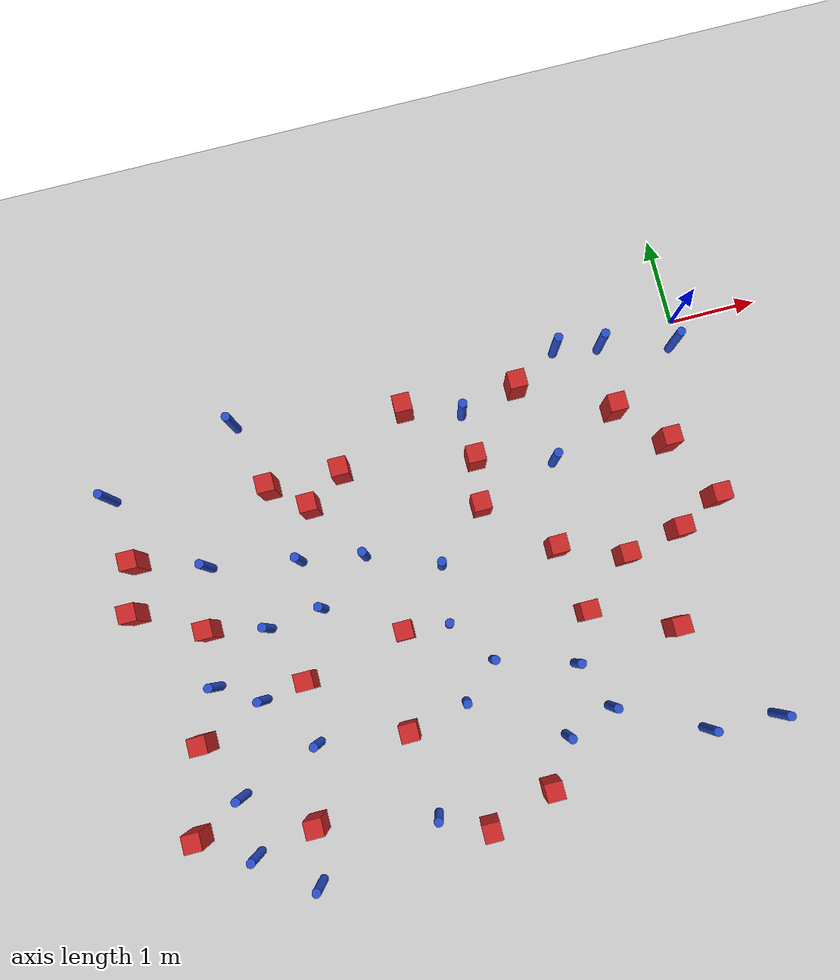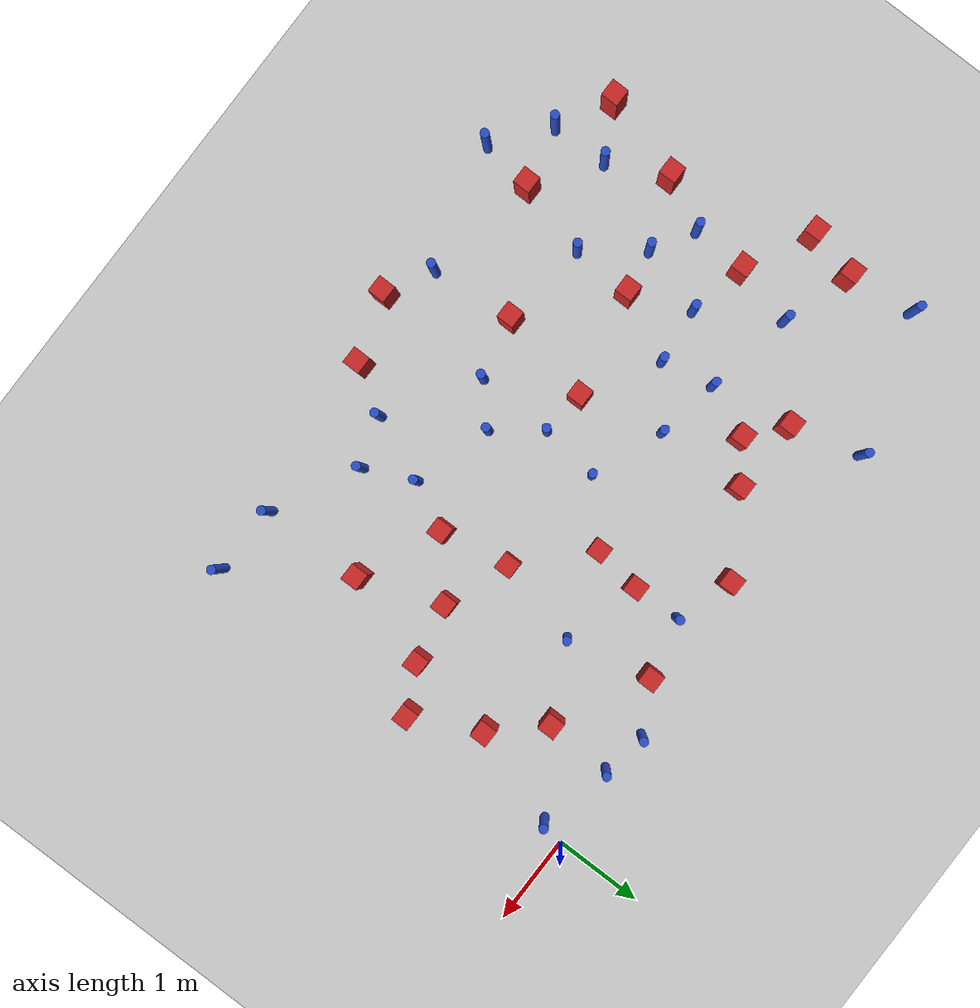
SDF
<sdf version="1.6">
 <world name="default">
  <model name="ground_plane">
   <static>1</static>
   <link name="link">
    <collision name="collision">
     <geometry><plane><normal>0 0 1</normal><size>100 100</size></plane></geometry>
     <surface><friction><ode><mu>100</mu><mu2>50</mu2></ode></friction></surface>
    </collision>
    <visual name="visual">
     <cast_shadows>0</cast_shadows>
     <geometry><plane><normal>0 0 1</normal><size>100 100</size></plane></geometry>
     <material>
      <ambient>1.0 1.0 1.0 1.0</ambient>
      <diffuse>0.8 0.8 0.8 1.0</diffuse>
      <specular>0.01 0.01 0.01 1.000000</specular>
     </material>
    </visual>
   </link>
  </model>
  <model name="NamedLocations">
   <static>true</static>
   <link name="DefaultStart"><pose>8.5 0 0 0 0 3.14</pose></link>
  </model>
  <model name="pole_obstacle0">
   <static>true</static>
   <pose>-5.31480974983 -2.30998127651 -2.66029137441e-07 -5.69430205643e-07 6.84129966548e-07 -8.68349370881e-08</pose>
   <link name="link">
    <pose>0 0 0.3 0 -0 0</pose>
    <inertial>
     <mass>1</mass>
     <inertia><ixx>0.145833</ixx><ixy>0</ixy><ixz>0</ixz><iyy>0.145833</iyy><iyz>0</iyz><izz>0.125</izz></inertia>
    </inertial>
    <collision name="collision">
     <geometry><cylinder><radius>0.05</radius><length>.6</length></cylinder></geometry>
    </collision>
    <visual name="visual">
     <geometry><cylinder><radius>0.05</radius><length>.6</length></cylinder></geometry>
     <material>
      <script><name>Gazebo/Blue</name><uri>file://media/materials/scripts/gazebo.material</uri></script>
     </material>
    </visual>
   </link>
  </model>
  <model name="pole_obstacle1">
   <static>true</static>
   <pose>-3.4054695182 -3.62984040929 -2.66029137441e-07 -5.69430205643e-07 6.84129966548e-07 -8.68349370903e-08</pose>
   <link name="link">
    <pose>0 0 0.3 0 -0 0</pose>
    <inertial>
     <mass>1</mass>
     <inertia><ixx>0.145833</ixx><ixy>0</ixy><ixz>0</ixz><iyy>0.145833</iyy><iyz>0</iyz><izz>0.125</izz></inertia>
    </inertial>
    <collision name="collision">
     <geometry><cylinder><radius>0.05</radius><length>.6</length></cylinder></geometry>
    </collision>
    <visual name="visual">
     <geometry><cylinder><radius>0.05</radius><length>.6</length></cylinder></geometry>
     <material>
      <script><name>Gazebo/Blue</name><uri>file://media/materials/scripts/gazebo.material</uri></script>
     </material>
    </visual>
   </link>
  </model>
  <model name="square_post_obstacle2">
   <static>true</static>
   <pose>-4.08276042932 -3.77510423322 -7.80171244635e-07 7.17449752808e-06 -5.6639232126e-07 2.2715510512e-05</pose>
   <link name="link">
    <pose>0 0 0.25 0 -0 0</pose>
    <inertial>
     <mass>100</mass>
     <inertia>
      <ixx>0.166667</ixx>
      <ixy>0</ixy>
      <ixz>0</ixz>
      <iyy>0.166667</iyy>
      <iyz>0</iyz>
      <izz>0.166667</izz>
     </inertia>
    </inertial>
    <collision name="collision"><geometry><box><size>.2 .2 .5</size></box></geometry></collision>
    <visual name="visual">
     <geometry><box><size>.2 .2 .5</size></box></geometry>
     <material>
      <script><name>Gazebo/Red</name><uri>file://media/materials/scripts/gazebo.material</uri></script>
     </material>
    </visual>
   </link>
  </model>
  <model name="square_post_obstacle3">
   <static>true</static>
   <pose>-2.63320074149 -1.02899796857 -7.80171244635e-07 7.17449752808e-06 -5.6639232126e-07 2.2715510512e-05</pose>
   <link name="link">
    <pose>0 0 0.25 0 -0 0</pose>
    <inertial>
     <mass>100</mass>
     <inertia>
      <ixx>0.166667</ixx>
      <ixy>0</ixy>
      <ixz>0</ixz>
      <iyy>0.166667</iyy>
      <iyz>0</iyz>
      <izz>0.166667</izz>
     </inertia>
    </inertial>
    <collision name="collision"><geometry><box><size>.2 .2 .5</size></box></geometry></collision>
    <visual name="visual">
     <geometry><box><size>.2 .2 .5</size></box></geometry>
     <material>
      <script><name>Gazebo/Red</name><uri>file://media/materials/scripts/gazebo.material</uri></script>
     </material>
    </visual>
   </link>
  </model>
  <model name="square_post_obstacle5">
   <static>true</static>
   <pose>-0.97354520431 -0.861248595019 -7.80171244635e-07 7.17449752808e-06 -5.6639232126e-07 2.2715510512e-05</pose>
   <link name="link">
    <pose>0 0 0.25 0 -0 0</pose>
    <inertial>
     <mass>100</mass>
     <inertia>
      <ixx>0.166667</ixx>
      <ixy>0</ixy>
      <ixz>0</ixz>
      <iyy>0.166667</iyy>
      <iyz>0</iyz>
      <izz>0.166667</izz>
     </inertia>
    </inertial>
    <collision name="collision"><geometry><box><size>.2 .2 .5</size></box></geometry></collision>
    <visual name="visual">
     <geometry><box><size>.2 .2 .5</size></box></geometry>
     <material>
      <script><name>Gazebo/Red</name><uri>file://media/materials/scripts/gazebo.material</uri></script>
     </material>
    </visual>
   </link>
  </model>
  <model name="pole_obstacle10">
   <static>true</static>
   <pose>-2.1281152215 -3.52390038128 -2.66029137441e-07 -5.69430205643e-07 6.84129966548e-07 -8.68349370903e-08</pose>
   <link name="link">
    <pose>0 0 0.3 0 -0 0</pose>
    <inertial>
     <mass>1</mass>
     <inertia><ixx>0.145833</ixx><ixy>0</ixy><ixz>0</ixz><iyy>0.145833</iyy><iyz>0</iyz><izz>0.125</izz></inertia>
    </inertial>
    <collision name="collision">
     <geometry><cylinder><radius>0.05</radius><length>.6</length></cylinder></geometry>
    </collision>
    <visual name="visual">
     <geometry><cylinder><radius>0.05</radius><length>.6</length></cylinder></geometry>
     <material>
      <script><name>Gazebo/Blue</name><uri>file://media/materials/scripts/gazebo.material</uri></script>
     </material>
    </visual>
   </link>
  </model>
  <model name="square_post_obstacle11">
   <static>true</static>
   <pose>-6.58977767759 -1.23455952323 -7.80171244635e-07 7.17449752808e-06 -5.6639232126e-07 2.2715510512e-05</pose>
   <link name="link">
    <pose>0 0 0.25 0 -0 0</pose>
    <inertial>
     <mass>100</mass>
     <inertia>
      <ixx>0.166667</ixx>
      <ixy>0</ixy>
      <ixz>0</ixz>
      <iyy>0.166667</iyy>
      <iyz>0</iyz>
      <izz>0.166667</izz>
     </inertia>
    </inertial>
    <collision name="collision"><geometry><box><size>.2 .2 .5</size></box></geometry></collision>
    <visual name="visual">
     <geometry><box><size>.2 .2 .5</size></box></geometry>
     <material>
      <script><name>Gazebo/Red</name><uri>file://media/materials/scripts/gazebo.material</uri></script>
     </material>
    </visual>
   </link>
  </model>
  <model name="pole_obstacle18">
   <static>true</static>
   <pose>-5.97897691177 -4.64420532735 -2.66029137441e-07 -5.69430205655e-07 6.84129966534e-07 -8.68349370984e-08</pose>
   <link name="link">
    <pose>0 0 0.3 0 -0 0</pose>
    <inertial>
     <mass>1</mass>
     <inertia><ixx>0.145833</ixx><ixy>0</ixy><ixz>0</ixz><iyy>0.145833</iyy><iyz>0</iyz><izz>0.125</izz></inertia>
    </inertial>
    <collision name="collision">
     <geometry><cylinder><radius>0.05</radius><length>.6</length></cylinder></geometry>
    </collision>
    <visual name="visual">
     <geometry><cylinder><radius>0.05</radius><length>.6</length></cylinder></geometry>
     <material>
      <script><name>Gazebo/Blue</name><uri>file://media/materials/scripts/gazebo.material</uri></script>
     </material>
    </visual>
   </link>
  </model>
  <model name="square_post_obstacle26">
   <static>true</static>
   <pose>-4.13092339159 -0.799358883415 -7.80171244635e-07 7.17449752808e-06 -5.6639232126e-07 2.2715510512e-05</pose>
   <link name="link">
    <pose>0 0 0.25 0 -0 0</pose>
    <inertial>
     <mass>100</mass>
     <inertia>
      <ixx>0.166667</ixx>
      <ixy>0</ixy>
      <ixz>0</ixz>
      <iyy>0.166667</iyy>
      <iyz>0</iyz>
      <izz>0.166667</izz>
     </inertia>
    </inertial>
    <collision name="collision"><geometry><box><size>.2 .2 .5</size></box></geometry></collision>
    <visual name="visual">
     <geometry><box><size>.2 .2 .5</size></box></geometry>
     <material>
      <script><name>Gazebo/Red</name><uri>file://media/materials/scripts/gazebo.material</uri></script>
     </material>
    </visual>
   </link>
  </model>
  <model name="square_post_obstacle27">
   <static>true</static>
   <pose>-0.961714128237 -3.40473056918 -7.80171244635e-07 7.17449752808e-06 -5.6639232126e-07 2.2715510512e-05</pose>
   <link name="link">
    <pose>0 0 0.25 0 -0 0</pose>
    <inertial>
     <mass>100</mass>
     <inertia>
      <ixx>0.166667</ixx>
      <ixy>0</ixy>
      <ixz>0</ixz>
      <iyy>0.166667</iyy>
      <iyz>0</iyz>
      <izz>0.166667</izz>
     </inertia>
    </inertial>
    <collision name="collision"><geometry><box><size>.2 .2 .5</size></box></geometry></collision>
    <visual name="visual">
     <geometry><box><size>.2 .2 .5</size></box></geometry>
     <material>
      <script><name>Gazebo/Red</name><uri>file://media/materials/scripts/gazebo.material</uri></script>
     </material>
    </visual>
   </link>
  </model>
  <model name="pole_obstacle40">
   <static>true</static>
   <pose>-5.39167906871 -5.10151447825 -2.66029137441e-07 -5.69430205655e-07 6.84129966534e-07 -8.68349370984e-08</pose>
   <link name="link">
    <pose>0 0 0.3 0 -0 0</pose>
    <inertial>
     <mass>1</mass>
     <inertia><ixx>0.145833</ixx><ixy>0</ixy><ixz>0</ixz><iyy>0.145833</iyy><iyz>0</iyz><izz>0.125</izz></inertia>
    </inertial>
    <collision name="collision">
     <geometry><cylinder><radius>0.05</radius><length>.6</length></cylinder></geometry>
    </collision>
    <visual name="visual">
     <geometry><cylinder><radius>0.05</radius><length>.6</length></cylinder></geometry>
     <material>
      <script><name>Gazebo/Blue</name><uri>file://media/materials/scripts/gazebo.material</uri></script>
     </material>
    </visual>
   </link>
  </model>
  <model name="pole_obstacle47">
   <static>true</static>
   <pose>-5.18003695618 0.0177498336318 -2.66029137441e-07 -5.69430205624e-07 6.8412996657e-07 -8.68349370742e-08</pose>
   <link name="link">
    <pose>0 0 0.3 0 -0 0</pose>
    <inertial>
     <mass>1</mass>
     <inertia><ixx>0.145833</ixx><ixy>0</ixy><ixz>0</ixz><iyy>0.145833</iyy><iyz>0</iyz><izz>0.125</izz></inertia>
    </inertial>
    <collision name="collision">
     <geometry><cylinder><radius>0.05</radius><length>.6</length></cylinder></geometry>
    </collision>
    <visual name="visual">
     <geometry><cylinder><radius>0.05</radius><length>.6</length></cylinder></geometry>
     <material>
      <script><name>Gazebo/Blue</name><uri>file://media/materials/scripts/gazebo.material</uri></script>
     </material>
    </visual>
   </link>
  </model>
  <model name="pole_obstacle58">
   <static>true</static>
   <pose>-2.64363936691 -0.482050326124 -2.66029137441e-07 -5.69430205631e-07 6.84129966562e-07 -8.68349370797e-08</pose>
   <link name="link">
    <pose>0 0 0.3 0 -0 0</pose>
    <inertial>
     <mass>1</mass>
     <inertia><ixx>0.145833</ixx><ixy>0</ixy><ixz>0</ixz><iyy>0.145833</iyy><iyz>0</iyz><izz>0.125</izz></inertia>
    </inertial>
    <collision name="collision">
     <geometry><cylinder><radius>0.05</radius><length>.6</length></cylinder></geometry>
    </collision>
    <visual name="visual">
     <geometry><cylinder><radius>0.05</radius><length>.6</length></cylinder></geometry>
     <material>
      <script><name>Gazebo/Blue</name><uri>file://media/materials/scripts/gazebo.material</uri></script>
     </material>
    </visual>
   </link>
  </model>
  <model name="pole_obstacle61">
   <static>true</static>
   <pose>-0.922826009975 -0.108753170742 -2.66029137441e-07 -5.69430205632e-07 6.84129966561e-07 -8.683493708e-08</pose>
   <link name="link">
    <pose>0 0 0.3 0 -0 0</pose>
    <inertial>
     <mass>1</mass>
     <inertia><ixx>0.145833</ixx><ixy>0</ixy><ixz>0</ixz><iyy>0.145833</iyy><iyz>0</iyz><izz>0.125</izz></inertia>
    </inertial>
    <collision name="collision">
     <geometry><cylinder><radius>0.05</radius><length>.6</length></cylinder></geometry>
    </collision>
    <visual name="visual">
     <geometry><cylinder><radius>0.05</radius><length>.6</length></cylinder></geometry>
     <material>
      <script><name>Gazebo/Blue</name><uri>file://media/materials/scripts/gazebo.material</uri></script>
     </material>
    </visual>
   </link>
  </model>
  <model name="square_post_obstacle49">
   <static>true</static>
   <pose>-0.134188480845 -2.11112355516 -7.80171244635e-07 7.17449752808e-06 -5.6639232126e-07 2.2715510512e-05</pose>
   <link name="link">
    <pose>0 0 0.25 0 -0 0</pose>
    <inertial>
     <mass>100</mass>
     <inertia>
      <ixx>0.166667</ixx>
      <ixy>0</ixy>
      <ixz>0</ixz>
      <iyy>0.166667</iyy>
      <iyz>0</iyz>
      <izz>0.166667</izz>
     </inertia>
    </inertial>
    <collision name="collision"><geometry><box><size>.2 .2 .5</size></box></geometry></collision>
    <visual name="visual">
     <geometry><box><size>.2 .2 .5</size></box></geometry>
     <material>
      <script><name>Gazebo/Red</name><uri>file://media/materials/scripts/gazebo.material</uri></script>
     </material>
    </visual>
   </link>
  </model>
  <model name="pole_obstacle64">
   <static>true</static>
   <pose>-1.43454465451 -0.023070368788 -2.66029137441e-07 -5.69430205639e-07 6.84129966552e-07 -8.68349370859e-08</pose>
   <link name="link">
    <pose>0 0 0.3 0 -0 0</pose>
    <inertial>
     <mass>1</mass>
     <inertia><ixx>0.145833</ixx><ixy>0</ixy><ixz>0</ixz><iyy>0.145833</iyy><iyz>0</iyz><izz>0.125</izz></inertia>
    </inertial>
    <collision name="collision">
     <geometry><cylinder><radius>0.05</radius><length>.6</length></cylinder></geometry>
    </collision>
    <visual name="visual">
     <geometry><cylinder><radius>0.05</radius><length>.6</length></cylinder></geometry>
     <material>
      <script><name>Gazebo/Blue</name><uri>file://media/materials/scripts/gazebo.material</uri></script>
     </material>
    </visual>
   </link>
  </model>
  <model name="square_post_obstacle50">
   <static>true</static>
   <pose>-0.490725618799 -1.37000280899 -7.80171244635e-07 7.17449752808e-06 -5.6639232126e-07 2.2715510512e-05</pose>
   <link name="link">
    <pose>0 0 0.25 0 -0 0</pose>
    <inertial>
     <mass>100</mass>
     <inertia>
      <ixx>0.166667</ixx>
      <ixy>0</ixy>
      <ixz>0</ixz>
      <iyy>0.166667</iyy>
      <iyz>0</iyz>
      <izz>0.166667</izz>
     </inertia>
    </inertial>
    <collision name="collision"><geometry><box><size>.2 .2 .5</size></box></geometry></collision>
    <visual name="visual">
     <geometry><box><size>.2 .2 .5</size></box></geometry>
     <material>
      <script><name>Gazebo/Red</name><uri>file://media/materials/scripts/gazebo.material</uri></script>
     </material>
    </visual>
   </link>
  </model>
  <model name="square_post_obstacle58">
   <static>true</static>
   <pose>-1.28801961862 -2.49920312969 -7.80171244635e-07 7.17449752808e-06 -5.6639232126e-07 2.2715510512e-05</pose>
   <link name="link">
    <pose>0 0 0.25 0 -0 0</pose>
    <inertial>
     <mass>100</mass>
     <inertia>
      <ixx>0.166667</ixx>
      <ixy>0</ixy>
      <ixz>0</ixz>
      <iyy>0.166667</iyy>
      <iyz>0</iyz>
      <izz>0.166667</izz>
     </inertia>
    </inertial>
    <collision name="collision"><geometry><box><size>.2 .2 .5</size></box></geometry></collision>
    <visual name="visual">
     <geometry><box><size>.2 .2 .5</size></box></geometry>
     <material>
      <script><name>Gazebo/Red</name><uri>file://media/materials/scripts/gazebo.material</uri></script>
     </material>
    </visual>
   </link>
  </model>
  <model name="square_post_obstacle60">
   <static>true</static>
   <pose>-4.55728557664 -1.10179400375 -7.80171244635e-07 7.17449752808e-06 -5.6639232126e-07 2.2715510512e-05</pose>
   <link name="link">
    <pose>0 0 0.25 0 -0 0</pose>
    <inertial>
     <mass>100</mass>
     <inertia>
      <ixx>0.166667</ixx>
      <ixy>0</ixy>
      <ixz>0</ixz>
      <iyy>0.166667</iyy>
      <iyz>0</iyz>
      <izz>0.166667</izz>
     </inertia>
    </inertial>
    <collision name="collision"><geometry><box><size>.2 .2 .5</size></box></geometry></collision>
    <visual name="visual">
     <geometry><box><size>.2 .2 .5</size></box></geometry>
     <material>
      <script><name>Gazebo/Red</name><uri>file://media/materials/scripts/gazebo.material</uri></script>
     </material>
    </visual>
   </link>
  </model>
  <model name="pole_obstacle72">
   <static>true</static>
   <pose>-1.77357552131 -1.2686371613 -2.66029137441e-07 -5.69430205631e-07 6.84129966561e-07 -8.68349370801e-08</pose>
   <link name="link">
    <pose>0 0 0.3 0 -0 0</pose>
    <inertial>
     <mass>1</mass>
     <inertia><ixx>0.145833</ixx><ixy>0</ixy><ixz>0</ixz><iyy>0.145833</iyy><iyz>0</iyz><izz>0.125</izz></inertia>
    </inertial>
    <collision name="collision">
     <geometry><cylinder><radius>0.05</radius><length>.6</length></cylinder></geometry>
    </collision>
    <visual name="visual">
     <geometry><cylinder><radius>0.05</radius><length>.6</length></cylinder></geometry>
     <material>
      <script><name>Gazebo/Blue</name><uri>file://media/materials/scripts/gazebo.material</uri></script>
     </material>
    </visual>
   </link>
  </model>
  <model name="pole_obstacle76">
   <static>true</static>
   <pose>-0.933149514957 -4.56151281711 -2.66029137441e-07 -5.69430205631e-07 6.84129966561e-07 -8.68349370784e-08</pose>
   <link name="link">
    <pose>0 0 0.3 0 -0 0</pose>
    <inertial>
     <mass>1</mass>
     <inertia><ixx>0.145833</ixx><ixy>0</ixy><ixz>0</ixz><iyy>0.145833</iyy><iyz>0</iyz><izz>0.125</izz></inertia>
    </inertial>
    <collision name="collision">
     <geometry><cylinder><radius>0.05</radius><length>.6</length></cylinder></geometry>
    </collision>
    <visual name="visual">
     <geometry><cylinder><radius>0.05</radius><length>.6</length></cylinder></geometry>
     <material>
      <script><name>Gazebo/Blue</name><uri>file://media/materials/scripts/gazebo.material</uri></script>
     </material>
    </visual>
   </link>
  </model>
  <model name="square_post_obstacle68">
   <static>true</static>
   <pose>-6.28549997619 -3.35256677984 -7.80171244635e-07 7.17449752808e-06 -5.6639232126e-07 2.2715510512e-05</pose>
   <link name="link">
    <pose>0 0 0.25 0 -0 0</pose>
    <inertial>
     <mass>100</mass>
     <inertia>
      <ixx>0.166667</ixx>
      <ixy>0</ixy>
      <ixz>0</ixz>
      <iyy>0.166667</iyy>
      <iyz>0</iyz>
      <izz>0.166667</izz>
     </inertia>
    </inertial>
    <collision name="collision"><geometry><box><size>.2 .2 .5</size></box></geometry></collision>
    <visual name="visual">
     <geometry><box><size>.2 .2 .5</size></box></geometry>
     <material>
      <script><name>Gazebo/Red</name><uri>file://media/materials/scripts/gazebo.material</uri></script>
     </material>
    </visual>
   </link>
  </model>
  <model name="square_post_obstacle73">
   <static>true</static>
   <pose>-2.70863230317 -1.56334786548 -7.80171244635e-07 7.17449752808e-06 -5.6639232126e-07 2.2715510512e-05</pose>
   <link name="link">
    <pose>0 0 0.25 0 -0 0</pose>
    <inertial>
     <mass>100</mass>
     <inertia>
      <ixx>0.166667</ixx>
      <ixy>0</ixy>
      <ixz>0</ixz>
      <iyy>0.166667</iyy>
      <iyz>0</iyz>
      <izz>0.166667</izz>
     </inertia>
    </inertial>
    <collision name="collision"><geometry><box><size>.2 .2 .5</size></box></geometry></collision>
    <visual name="visual">
     <geometry><box><size>.2 .2 .5</size></box></geometry>
     <material>
      <script><name>Gazebo/Red</name><uri>file://media/materials/scripts/gazebo.material</uri></script>
     </material>
    </visual>
   </link>
  </model>
  <model name="pole_obstacle86">
   <static>true</static>
   <pose>-3.0027866112 -3.25793591408 -2.66029137441e-07 -5.6943020563e-07 6.84129966563e-07 -8.68349370788e-08</pose>
   <link name="link">
    <pose>0 0 0.3 0 -0 0</pose>
    <inertial>
     <mass>1</mass>
     <inertia><ixx>0.145833</ixx><ixy>0</ixy><ixz>0</ixz><iyy>0.145833</iyy><iyz>0</iyz><izz>0.125</izz></inertia>
    </inertial>
    <collision name="collision">
     <geometry><cylinder><radius>0.05</radius><length>.6</length></cylinder></geometry>
    </collision>
    <visual name="visual">
     <geometry><cylinder><radius>0.05</radius><length>.6</length></cylinder></geometry>
     <material>
      <script><name>Gazebo/Blue</name><uri>file://media/materials/scripts/gazebo.material</uri></script>
     </material>
    </visual>
   </link>
  </model>
  <model name="square_post_obstacle75">
   <static>true</static>
   <pose>-0.638254333047 -2.36425969241 -7.80171244635e-07 7.17449752808e-06 -5.6639232126e-07 2.2715510512e-05</pose>
   <link name="link">
    <pose>0 0 0.25 0 -0 0</pose>
    <inertial>
     <mass>100</mass>
     <inertia>
      <ixx>0.166667</ixx>
      <ixy>0</ixy>
      <ixz>0</ixz>
      <iyy>0.166667</iyy>
      <iyz>0</iyz>
      <izz>0.166667</izz>
     </inertia>
    </inertial>
    <collision name="collision"><geometry><box><size>.2 .2 .5</size></box></geometry></collision>
    <visual name="visual">
     <geometry><box><size>.2 .2 .5</size></box></geometry>
     <material>
      <script><name>Gazebo/Red</name><uri>file://media/materials/scripts/gazebo.material</uri></script>
     </material>
    </visual>
   </link>
  </model>
  <model name="square_post_obstacle76">
   <static>true</static>
   <pose>-6.56061072974 -4.31150388161 -7.80171244635e-07 7.17449752808e-06 -5.6639232126e-07 2.2715510512e-05</pose>
   <link name="link">
    <pose>0 0 0.25 0 -0 0</pose>
    <inertial>
     <mass>100</mass>
     <inertia>
      <ixx>0.166667</ixx>
      <ixy>0</ixy>
      <ixz>0</ixz>
      <iyy>0.166667</iyy>
      <iyz>0</iyz>
      <izz>0.166667</izz>
     </inertia>
    </inertial>
    <collision name="collision"><geometry><box><size>.2 .2 .5</size></box></geometry></collision>
    <visual name="visual">
     <geometry><box><size>.2 .2 .5</size></box></geometry>
     <material>
      <script><name>Gazebo/Red</name><uri>file://media/materials/scripts/gazebo.material</uri></script>
     </material>
    </visual>
   </link>
  </model>
  <model name="square_post_obstacle83">
   <static>true</static>
   <pose>-2.01210372772 -2.22523206173 -7.80171244635e-07 7.17449752808e-06 -5.6639232126e-07 2.2715510512e-05</pose>
   <link name="link">
    <pose>0 0 0.25 0 -0 0</pose>
    <inertial>
     <mass>100</mass>
     <inertia>
      <ixx>0.166667</ixx>
      <ixy>0</ixy>
      <ixz>0</ixz>
      <iyy>0.166667</iyy>
      <iyz>0</iyz>
      <izz>0.166667</izz>
     </inertia>
    </inertial>
    <collision name="collision"><geometry><box><size>.2 .2 .5</size></box></geometry></collision>
    <visual name="visual">
     <geometry><box><size>.2 .2 .5</size></box></geometry>
     <material>
      <script><name>Gazebo/Red</name><uri>file://media/materials/scripts/gazebo.material</uri></script>
     </material>
    </visual>
   </link>
  </model>
  <model name="square_post_obstacle93">
   <static>true</static>
   <pose>-6.71510897131 -1.79387274467 -7.80171244635e-07 7.17449752808e-06 -5.6639232126e-07 2.2715510512e-05</pose>
   <link name="link">
    <pose>0 0 0.25 0 -0 0</pose>
    <inertial>
     <mass>100</mass>
     <inertia>
      <ixx>0.166667</ixx>
      <ixy>0</ixy>
      <ixz>0</ixz>
      <iyy>0.166667</iyy>
      <iyz>0</iyz>
      <izz>0.166667</izz>
     </inertia>
    </inertial>
    <collision name="collision"><geometry><box><size>.2 .2 .5</size></box></geometry></collision>
    <visual name="visual">
     <geometry><box><size>.2 .2 .5</size></box></geometry>
     <material>
      <script><name>Gazebo/Red</name><uri>file://media/materials/scripts/gazebo.material</uri></script>
     </material>
    </visual>
   </link>
  </model>
  <model name="square_post_obstacle103">
   <static>true</static>
   <pose>-2.74400677237 -4.74650119607 -7.80171244635e-07 7.17449752808e-06 -5.6639232126e-07 2.2715510512e-05</pose>
   <link name="link">
    <pose>0 0 0.25 0 -0 0</pose>
    <inertial>
     <mass>100</mass>
     <inertia>
      <ixx>0.166667</ixx>
      <ixy>0</ixy>
      <ixz>0</ixz>
      <iyy>0.166667</iyy>
      <iyz>0</iyz>
      <izz>0.166667</izz>
     </inertia>
    </inertial>
    <collision name="collision"><geometry><box><size>.2 .2 .5</size></box></geometry></collision>
    <visual name="visual">
     <geometry><box><size>.2 .2 .5</size></box></geometry>
     <material>
      <script><name>Gazebo/Red</name><uri>file://media/materials/scripts/gazebo.material</uri></script>
     </material>
    </visual>
   </link>
  </model>
  <model name="square_post_obstacle105">
   <static>true</static>
   <pose>-1.98019736166 -0.335727540479 -7.80171244635e-07 7.17449752808e-06 -5.6639232126e-07 2.2715510512e-05</pose>
   <link name="link">
    <pose>0 0 0.25 0 -0 0</pose>
    <inertial>
     <mass>100</mass>
     <inertia>
      <ixx>0.166667</ixx>
      <ixy>0</ixy>
      <ixz>0</ixz>
      <iyy>0.166667</iyy>
      <iyz>0</iyz>
      <izz>0.166667</izz>
     </inertia>
    </inertial>
    <collision name="collision"><geometry><box><size>.2 .2 .5</size></box></geometry></collision>
    <visual name="visual">
     <geometry><box><size>.2 .2 .5</size></box></geometry>
     <material>
      <script><name>Gazebo/Red</name><uri>file://media/materials/scripts/gazebo.material</uri></script>
     </material>
    </visual>
   </link>
  </model>
  <model name="square_post_obstacle107">
   <static>true</static>
   <pose>-3.87442016965 -2.70972119349 -7.80171244635e-07 7.17449752808e-06 -5.6639232126e-07 2.2715510512e-05</pose>
   <link name="link">
    <pose>0 0 0.25 0 -0 0</pose>
    <inertial>
     <mass>100</mass>
     <inertia>
      <ixx>0.166667</ixx>
      <ixy>0</ixy>
      <ixz>0</ixz>
      <iyy>0.166667</iyy>
      <iyz>0</iyz>
      <izz>0.166667</izz>
     </inertia>
    </inertial>
    <collision name="collision"><geometry><box><size>.2 .2 .5</size></box></geometry></collision>
    <visual name="visual">
     <geometry><box><size>.2 .2 .5</size></box></geometry>
     <material>
      <script><name>Gazebo/Red</name><uri>file://media/materials/scripts/gazebo.material</uri></script>
     </material>
    </visual>
   </link>
  </model>
  <model name="square_post_obstacle112">
   <static>true</static>
   <pose>-3.48562994999 -4.98813599441 -7.80171244635e-07 7.17449752808e-06 -5.6639232126e-07 2.2715510512e-05</pose>
   <link name="link">
    <pose>0 0 0.25 0 -0 0</pose>
    <inertial>
     <mass>100</mass>
     <inertia>
      <ixx>0.166667</ixx>
      <ixy>0</ixy>
      <ixz>0</ixz>
      <iyy>0.166667</iyy>
      <iyz>0</iyz>
      <izz>0.166667</izz>
     </inertia>
    </inertial>
    <collision name="collision"><geometry><box><size>.2 .2 .5</size></box></geometry></collision>
    <visual name="visual">
     <geometry><box><size>.2 .2 .5</size></box></geometry>
     <material>
      <script><name>Gazebo/Red</name><uri>file://media/materials/scripts/gazebo.material</uri></script>
     </material>
    </visual>
   </link>
  </model>
  <model name="pole_obstacle117">
   <static>true</static>
   <pose>-6.01035477378 -2.79055213842 -2.66029137441e-07 -5.69430205643e-07 6.84129966548e-07 -8.68349370881e-08</pose>
   <link name="link">
    <pose>0 0 0.3 0 -0 0</pose>
    <inertial>
     <mass>1</mass>
     <inertia><ixx>0.145833</ixx><ixy>0</ixy><ixz>0</ixz><iyy>0.145833</iyy><iyz>0</iyz><izz>0.125</izz></inertia>
    </inertial>
    <collision name="collision">
     <geometry><cylinder><radius>0.05</radius><length>.6</length></cylinder></geometry>
    </collision>
    <visual name="visual">
     <geometry><cylinder><radius>0.05</radius><length>.6</length></cylinder></geometry>
     <material>
      <script><name>Gazebo/Blue</name><uri>file://media/materials/scripts/gazebo.material</uri></script>
     </material>
    </visual>
   </link>
  </model>
  <model name="square_post_obstacle119">
   <static>true</static>
   <pose>-1.87155576942 -2.99613388934 -7.80171244635e-07 7.17449752808e-06 -5.6639232126e-07 2.2715510512e-05</pose>
   <link name="link">
    <pose>0 0 0.25 0 -0 0</pose>
    <inertial>
     <mass>100</mass>
     <inertia>
      <ixx>0.166667</ixx>
      <ixy>0</ixy>
      <ixz>0</ixz>
      <iyy>0.166667</iyy>
      <iyz>0</iyz>
      <izz>0.166667</izz>
     </inertia>
    </inertial>
    <collision name="collision"><geometry><box><size>.2 .2 .5</size></box></geometry></collision>
    <visual name="visual">
     <geometry><box><size>.2 .2 .5</size></box></geometry>
     <material>
      <script><name>Gazebo/Red</name><uri>file://media/materials/scripts/gazebo.material</uri></script>
     </material>
    </visual>
   </link>
  </model>
  <model name="pole_obstacle129">
   <static>true</static>
   <pose>-0.144378258858 -4.59768721165 -2.66029137441e-07 -5.69430205634e-07 6.84129966558e-07 -8.68349370829e-08</pose>
   <link name="link">
    <pose>0 0 0.3 0 -0 0</pose>
    <inertial>
     <mass>1</mass>
     <inertia><ixx>0.145833</ixx><ixy>0</ixy><ixz>0</ixz><iyy>0.145833</iyy><iyz>0</iyz><izz>0.125</izz></inertia>
    </inertial>
    <collision name="collision">
     <geometry><cylinder><radius>0.05</radius><length>.6</length></cylinder></geometry>
    </collision>
    <visual name="visual">
     <geometry><cylinder><radius>0.05</radius><length>.6</length></cylinder></geometry>
     <material>
      <script><name>Gazebo/Blue</name><uri>file://media/materials/scripts/gazebo.material</uri></script>
     </material>
    </visual>
   </link>
  </model>
  <model name="pole_obstacle134">
   <static>true</static>
   <pose>-0.110065105278 -0.298378892347 -2.66029137441e-07 -5.6943020563e-07 6.84129966563e-07 -8.68349370778e-08</pose>
   <link name="link">
    <pose>0 0 0.3 0 -0 0</pose>
    <inertial>
     <mass>1</mass>
     <inertia><ixx>0.145833</ixx><ixy>0</ixy><ixz>0</ixz><iyy>0.145833</iyy><iyz>0</iyz><izz>0.125</izz></inertia>
    </inertial>
    <collision name="collision">
     <geometry><cylinder><radius>0.05</radius><length>.6</length></cylinder></geometry>
    </collision>
    <visual name="visual">
     <geometry><cylinder><radius>0.05</radius><length>.6</length></cylinder></geometry>
     <material>
      <script><name>Gazebo/Blue</name><uri>file://media/materials/scripts/gazebo.material</uri></script>
     </material>
    </visual>
   </link>
  </model>
  <model name="pole_obstacle136">
   <static>true</static>
   <pose>-4.68988680515 -2.24405859606 -2.66029137441e-07 -5.69430205643e-07 6.84129966548e-07 -8.68349370881e-08</pose>
   <link name="link">
    <pose>0 0 0.3 0 -0 0</pose>
    <inertial>
     <mass>1</mass>
     <inertia><ixx>0.145833</ixx><ixy>0</ixy><ixz>0</ixz><iyy>0.145833</iyy><iyz>0</iyz><izz>0.125</izz></inertia>
    </inertial>
    <collision name="collision">
     <geometry><cylinder><radius>0.05</radius><length>.6</length></cylinder></geometry>
    </collision>
    <visual name="visual">
     <geometry><cylinder><radius>0.05</radius><length>.6</length></cylinder></geometry>
     <material>
      <script><name>Gazebo/Blue</name><uri>file://media/materials/scripts/gazebo.material</uri></script>
     </material>
    </visual>
   </link>
  </model>
  <model name="square_post_obstacle137">
   <static>true</static>
   <pose>-5.03976296957 -2.97103475725 -7.80171244635e-07 7.17449752808e-06 -5.6639232126e-07 2.2715510512e-05</pose>
   <link name="link">
    <pose>0 0 0.25 0 -0 0</pose>
    <inertial>
     <mass>100</mass>
     <inertia>
      <ixx>0.166667</ixx>
      <ixy>0</ixy>
      <ixz>0</ixz>
      <iyy>0.166667</iyy>
      <iyz>0</iyz>
      <izz>0.166667</izz>
     </inertia>
    </inertial>
    <collision name="collision"><geometry><box><size>.2 .2 .5</size></box></geometry></collision>
    <visual name="visual">
     <geometry><box><size>.2 .2 .5</size></box></geometry>
     <material>
      <script><name>Gazebo/Red</name><uri>file://media/materials/scripts/gazebo.material</uri></script>
     </material>
    </visual>
   </link>
  </model>
  <model name="pole_obstacle142">
   <static>true</static>
   <pose>-1.88290577413 -4.06966398553 -2.66029137441e-07 -5.69430205635e-07 6.84129966557e-07 -8.68349370822e-08</pose>
   <link name="link">
    <pose>0 0 0.3 0 -0 0</pose>
    <inertial>
     <mass>1</mass>
     <inertia><ixx>0.145833</ixx><ixy>0</ixy><ixz>0</ixz><iyy>0.145833</iyy><iyz>0</iyz><izz>0.125</izz></inertia>
    </inertial>
    <collision name="collision">
     <geometry><cylinder><radius>0.05</radius><length>.6</length></cylinder></geometry>
    </collision>
    <visual name="visual">
     <geometry><cylinder><radius>0.05</radius><length>.6</length></cylinder></geometry>
     <material>
      <script><name>Gazebo/Blue</name><uri>file://media/materials/scripts/gazebo.material</uri></script>
     </material>
    </visual>
   </link>
  </model>
  <model name="square_post_obstacle147">
   <static>true</static>
   <pose>-5.29130703127 -4.48699160383 -7.80171244635e-07 7.17449752808e-06 -5.6639232126e-07 2.2715510512e-05</pose>
   <link name="link">
    <pose>0 0 0.25 0 -0 0</pose>
    <inertial>
     <mass>100</mass>
     <inertia>
      <ixx>0.166667</ixx>
      <ixy>0</ixy>
      <ixz>0</ixz>
      <iyy>0.166667</iyy>
      <iyz>0</iyz>
      <izz>0.166667</izz>
     </inertia>
    </inertial>
    <collision name="collision"><geometry><box><size>.2 .2 .5</size></box></geometry></collision>
    <visual name="visual">
     <geometry><box><size>.2 .2 .5</size></box></geometry>
     <material>
      <script><name>Gazebo/Red</name><uri>file://media/materials/scripts/gazebo.material</uri></script>
     </material>
    </visual>
   </link>
  </model>
  <model name="square_post_obstacle148">
   <static>true</static>
   <pose>-4.95684437683 -0.778903376859 -7.80171244635e-07 7.17449752808e-06 -5.6639232126e-07 2.2715510512e-05</pose>
   <link name="link">
    <pose>0 0 0.25 0 -0 0</pose>
    <inertial>
     <mass>100</mass>
     <inertia>
      <ixx>0.166667</ixx>
      <ixy>0</ixy>
      <ixz>0</ixz>
      <iyy>0.166667</iyy>
      <iyz>0</iyz>
      <izz>0.166667</izz>
     </inertia>
    </inertial>
    <collision name="collision"><geometry><box><size>.2 .2 .5</size></box></geometry></collision>
    <visual name="visual">
     <geometry><box><size>.2 .2 .5</size></box></geometry>
     <material>
      <script><name>Gazebo/Red</name><uri>file://media/materials/scripts/gazebo.material</uri></script>
     </material>
    </visual>
   </link>
  </model>
  <model name="square_post_obstacle149">
   <static>true</static>
   <pose>-5.9608348675 -2.17119950395 -7.80171244635e-07 7.17449752808e-06 -5.6639232126e-07 2.2715510512e-05</pose>
   <link name="link">
    <pose>0 0 0.25 0 -0 0</pose>
    <inertial>
     <mass>100</mass>
     <inertia>
      <ixx>0.166667</ixx>
      <ixy>0</ixy>
      <ixz>0</ixz>
      <iyy>0.166667</iyy>
      <iyz>0</iyz>
      <izz>0.166667</izz>
     </inertia>
    </inertial>
    <collision name="collision"><geometry><box><size>.2 .2 .5</size></box></geometry></collision>
    <visual name="visual">
     <geometry><box><size>.2 .2 .5</size></box></geometry>
     <material>
      <script><name>Gazebo/Red</name><uri>file://media/materials/scripts/gazebo.material</uri></script>
     </material>
    </visual>
   </link>
  </model>
  <model name="pole_obstacle160">
   <static>true</static>
   <pose>-4.80751456089 -1.66548750971 -2.66029137441e-07 -5.69430205627e-07 6.84129966567e-07 -8.68349370776e-08</pose>
   <link name="link">
    <pose>0 0 0.3 0 -0 0</pose>
    <inertial>
     <mass>1</mass>
     <inertia><ixx>0.145833</ixx><ixy>0</ixy><ixz>0</ixz><iyy>0.145833</iyy><iyz>0</iyz><izz>0.125</izz></inertia>
    </inertial>
    <collision name="collision">
     <geometry><cylinder><radius>0.05</radius><length>.6</length></cylinder></geometry>
    </collision>
    <visual name="visual">
     <geometry><cylinder><radius>0.05</radius><length>.6</length></cylinder></geometry>
     <material>
      <script><name>Gazebo/Blue</name><uri>file://media/materials/scripts/gazebo.material</uri></script>
     </material>
    </visual>
   </link>
  </model>
  <model name="pole_obstacle162">
   <static>true</static>
   <pose>-3.29346708624 -2.10209045979 -2.66029137441e-07 -5.6943020563e-07 6.84129966563e-07 -8.68349370788e-08</pose>
   <link name="link">
    <pose>0 0 0.3 0 -0 0</pose>
    <inertial>
     <mass>1</mass>
     <inertia><ixx>0.145833</ixx><ixy>0</ixy><ixz>0</ixz><iyy>0.145833</iyy><iyz>0</iyz><izz>0.125</izz></inertia>
    </inertial>
    <collision name="collision">
     <geometry><cylinder><radius>0.05</radius><length>.6</length></cylinder></geometry>
    </collision>
    <visual name="visual">
     <geometry><cylinder><radius>0.05</radius><length>.6</length></cylinder></geometry>
     <material>
      <script><name>Gazebo/Blue</name><uri>file://media/materials/scripts/gazebo.material</uri></script>
     </material>
    </visual>
   </link>
  </model>
  <model name="pole_obstacle167">
   <static>true</static>
   <pose>-3.37468685903 -2.75969978658 -2.66029137441e-07 -5.6943020563e-07 6.84129966563e-07 -8.68349370788e-08</pose>
   <link name="link">
    <pose>0 0 0.3 0 -0 0</pose>
    <inertial>
     <mass>1</mass>
     <inertia><ixx>0.145833</ixx><ixy>0</ixy><ixz>0</ixz><iyy>0.145833</iyy><iyz>0</iyz><izz>0.125</izz></inertia>
    </inertial>
    <collision name="collision">
     <geometry><cylinder><radius>0.05</radius><length>.6</length></cylinder></geometry>
    </collision>
    <visual name="visual">
     <geometry><cylinder><radius>0.05</radius><length>.6</length></cylinder></geometry>
     <material>
      <script><name>Gazebo/Blue</name><uri>file://media/materials/scripts/gazebo.material</uri></script>
     </material>
    </visual>
   </link>
  </model>
  <model name="pole_obstacle169">
   <static>true</static>
   <pose>-5.07652340141 -3.66050573677 -2.66029137441e-07 -5.69430205643e-07 6.84129966548e-07 -8.68349370881e-08</pose>
   <link name="link">
    <pose>0 0 0.3 0 -0 0</pose>
    <inertial>
     <mass>1</mass>
     <inertia><ixx>0.145833</ixx><ixy>0</ixy><ixz>0</ixz><iyy>0.145833</iyy><iyz>0</iyz><izz>0.125</izz></inertia>
    </inertial>
    <collision name="collision">
     <geometry><cylinder><radius>0.05</radius><length>.6</length></cylinder></geometry>
    </collision>
    <visual name="visual">
     <geometry><cylinder><radius>0.05</radius><length>.6</length></cylinder></geometry>
     <material>
      <script><name>Gazebo/Blue</name><uri>file://media/materials/scripts/gazebo.material</uri></script>
     </material>
    </visual>
   </link>
  </model>
  <model name="pole_obstacle172">
   <static>true</static>
   <pose>-5.81115239794 -1.48246139772 -2.66029137441e-07 -5.69430205627e-07 6.84129966567e-07 -8.68349370776e-08</pose>
   <link name="link">
    <pose>0 0 0.3 0 -0 0</pose>
    <inertial>
     <mass>1</mass>
     <inertia><ixx>0.145833</ixx><ixy>0</ixy><ixz>0</ixz><iyy>0.145833</iyy><iyz>0</iyz><izz>0.125</izz></inertia>
    </inertial>
    <collision name="collision">
     <geometry><cylinder><radius>0.05</radius><length>.6</length></cylinder></geometry>
    </collision>
    <visual name="visual">
     <geometry><cylinder><radius>0.05</radius><length>.6</length></cylinder></geometry>
     <material>
      <script><name>Gazebo/Blue</name><uri>file://media/materials/scripts/gazebo.material</uri></script>
     </material>
    </visual>
   </link>
  </model>
  <model name="square_post_obstacle175">
   <static>true</static>
   <pose>-3.28124190505 -0.279411082608 -7.80171244635e-07 7.17449752808e-06 -5.6639232126e-07 2.2715510512e-05</pose>
   <link name="link">
    <pose>0 0 0.25 0 -0 0</pose>
    <inertial>
     <mass>100</mass>
     <inertia>
      <ixx>0.166667</ixx>
      <ixy>0</ixy>
      <ixz>0</ixz>
      <iyy>0.166667</iyy>
      <iyz>0</iyz>
      <izz>0.166667</izz>
     </inertia>
    </inertial>
    <collision name="collision"><geometry><box><size>.2 .2 .5</size></box></geometry></collision>
    <visual name="visual">
     <geometry><box><size>.2 .2 .5</size></box></geometry>
     <material>
      <script><name>Gazebo/Red</name><uri>file://media/materials/scripts/gazebo.material</uri></script>
     </material>
    </visual>
   </link>
  </model>
  <model name="pole_obstacle183">
   <static>true</static>
   <pose>-3.99904242768 -4.72565063184 -2.66029137441e-07 -5.69430205626e-07 6.84129966567e-07 -8.68349370761e-08</pose>
   <link name="link">
    <pose>0 0 0.3 0 -0 0</pose>
    <inertial>
     <mass>1</mass>
     <inertia><ixx>0.145833</ixx><ixy>0</ixy><ixz>0</ixz><iyy>0.145833</iyy><iyz>0</iyz><izz>0.125</izz></inertia>
    </inertial>
    <collision name="collision">
     <geometry><cylinder><radius>0.05</radius><length>.6</length></cylinder></geometry>
    </collision>
    <visual name="visual">
     <geometry><cylinder><radius>0.05</radius><length>.6</length></cylinder></geometry>
     <material>
      <script><name>Gazebo/Blue</name><uri>file://media/materials/scripts/gazebo.material</uri></script>
     </material>
    </visual>
   </link>
  </model>
  <model name="pole_obstacle187">
   <static>true</static>
   <pose>-6.70332378774 -0.470330804482 -2.66029137441e-07 -5.69430205625e-07 6.84129966569e-07 -8.68349370749e-08</pose>
   <link name="link">
    <pose>0 0 0.3 0 -0 0</pose>
    <inertial>
     <mass>1</mass>
     <inertia><ixx>0.145833</ixx><ixy>0</ixy><ixz>0</ixz><iyy>0.145833</iyy><iyz>0</iyz><izz>0.125</izz></inertia>
    </inertial>
    <collision name="collision">
     <geometry><cylinder><radius>0.05</radius><length>.6</length></cylinder></geometry>
    </collision>
    <visual name="visual">
     <geometry><cylinder><radius>0.05</radius><length>.6</length></cylinder></geometry>
     <material>
      <script><name>Gazebo/Blue</name><uri>file://media/materials/scripts/gazebo.material</uri></script>
     </material>
    </visual>
   </link>
  </model>
  <model name="pole_obstacle191">
   <static>true</static>
   <pose>-5.99433913853 -4.00404092539 -2.66029137441e-07 -5.69430205654e-07 6.84129966535e-07 -8.6834937098e-08</pose>
   <link name="link">
    <pose>0 0 0.3 0 -0 0</pose>
    <inertial>
     <mass>1</mass>
     <inertia><ixx>0.145833</ixx><ixy>0</ixy><ixz>0</ixz><iyy>0.145833</iyy><iyz>0</iyz><izz>0.125</izz></inertia>
    </inertial>
    <collision name="collision">
     <geometry><cylinder><radius>0.05</radius><length>.6</length></cylinder></geometry>
    </collision>
    <visual name="visual">
     <geometry><cylinder><radius>0.05</radius><length>.6</length></cylinder></geometry>
     <material>
      <script><name>Gazebo/Blue</name><uri>file://media/materials/scripts/gazebo.material</uri></script>
     </material>
    </visual>
   </link>
  </model>
  <model name="pole_obstacle194">
   <static>true</static>
   <pose>-2.43089112568 -4.25321966542 -2.66029137441e-07 -5.69430205635e-07 6.84129966557e-07 -8.68349370832e-08</pose>
   <link name="link">
    <pose>0 0 0.3 0 -0 0</pose>
    <inertial>
     <mass>1</mass>
     <inertia><ixx>0.145833</ixx><ixy>0</ixy><ixz>0</ixz><iyy>0.145833</iyy><iyz>0</iyz><izz>0.125</izz></inertia>
    </inertial>
    <collision name="collision">
     <geometry><cylinder><radius>0.05</radius><length>.6</length></cylinder></geometry>
    </collision>
    <visual name="visual">
     <geometry><cylinder><radius>0.05</radius><length>.6</length></cylinder></geometry>
     <material>
      <script><name>Gazebo/Blue</name><uri>file://media/materials/scripts/gazebo.material</uri></script>
     </material>
    </visual>
   </link>
  </model>
  <model name="pole_obstacle212">
   <static>true</static>
   <pose>-5.54280197928 -3.06068643052 -2.66029137441e-07 -5.69430205643e-07 6.84129966548e-07 -8.68349370881e-08</pose>
   <link name="link">
    <pose>0 0 0.3 0 -0 0</pose>
    <inertial>
     <mass>1</mass>
     <inertia><ixx>0.145833</ixx><ixy>0</ixy><ixz>0</ixz><iyy>0.145833</iyy><iyz>0</iyz><izz>0.125</izz></inertia>
    </inertial>
    <collision name="collision">
     <geometry><cylinder><radius>0.05</radius><length>.6</length></cylinder></geometry>
    </collision>
    <visual name="visual">
     <geometry><cylinder><radius>0.05</radius><length>.6</length></cylinder></geometry>
     <material>
      <script><name>Gazebo/Blue</name><uri>file://media/materials/scripts/gazebo.material</uri></script>
     </material>
    </visual>
   </link>
  </model>
  <model name="pole_obstacle219">
   <static>true</static>
   <pose>-4.09609999112 -1.78806997996 -2.66029137441e-07 -5.69430205626e-07 6.84129966567e-07 -8.68349370773e-08</pose>
   <link name="link">
    <pose>0 0 0.3 0 -0 0</pose>
    <inertial>
     <mass>1</mass>
     <inertia><ixx>0.145833</ixx><ixy>0</ixy><ixz>0</ixz><iyy>0.145833</iyy><iyz>0</iyz><izz>0.125</izz></inertia>
    </inertial>
    <collision name="collision">
     <geometry><cylinder><radius>0.05</radius><length>.6</length></cylinder></geometry>
    </collision>
    <visual name="visual">
     <geometry><cylinder><radius>0.05</radius><length>.6</length></cylinder></geometry>
     <material>
      <script><name>Gazebo/Blue</name><uri>file://media/materials/scripts/gazebo.material</uri></script>
     </material>
    </visual>
   </link>
  </model>
 </world>
</sdf>
